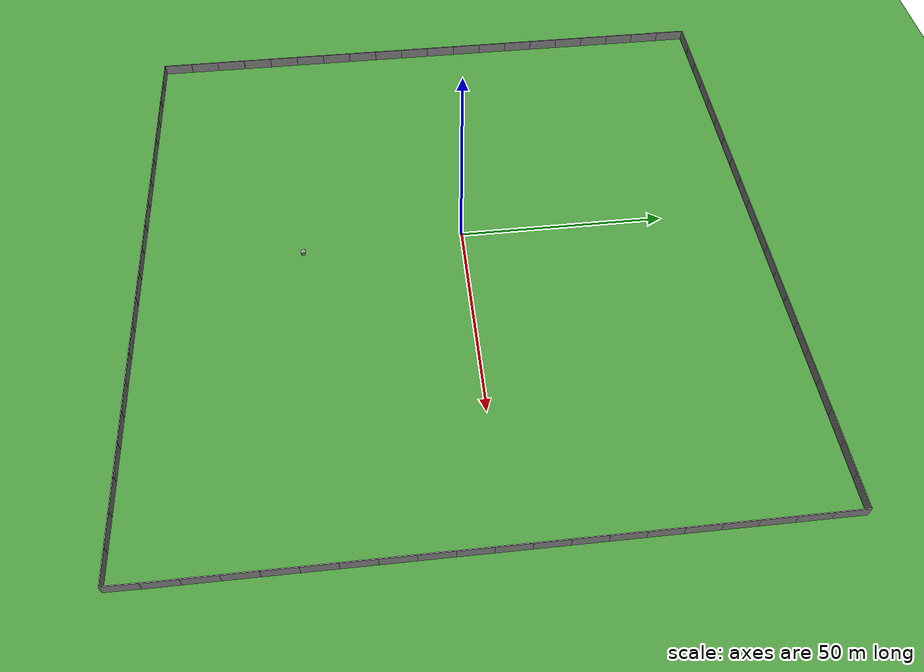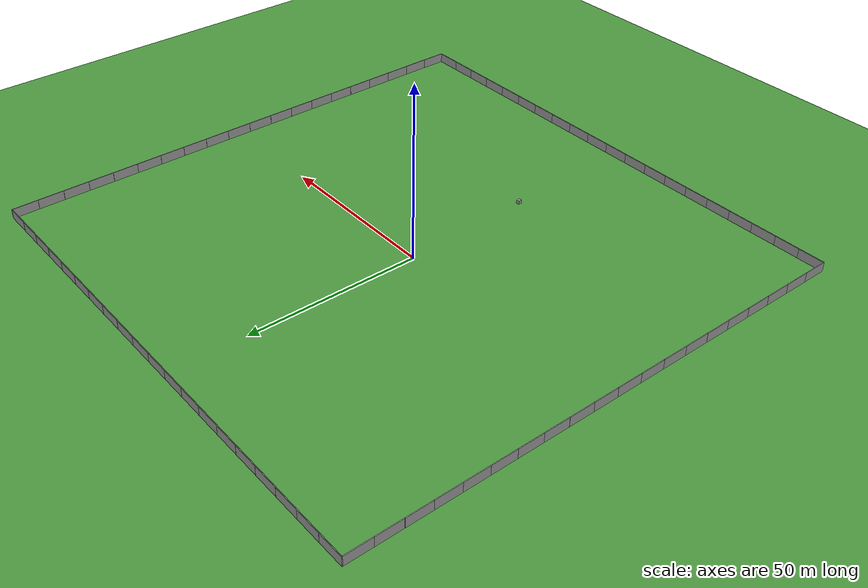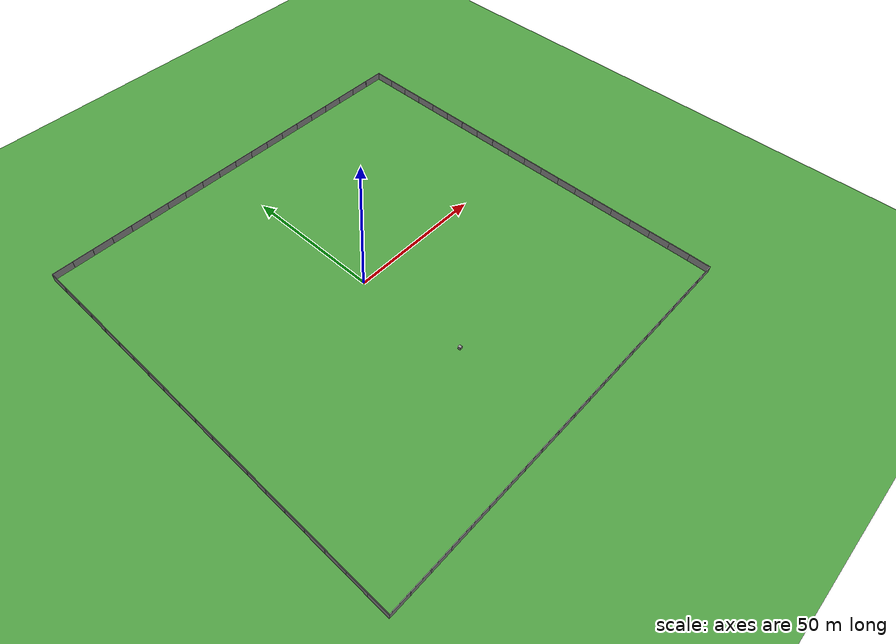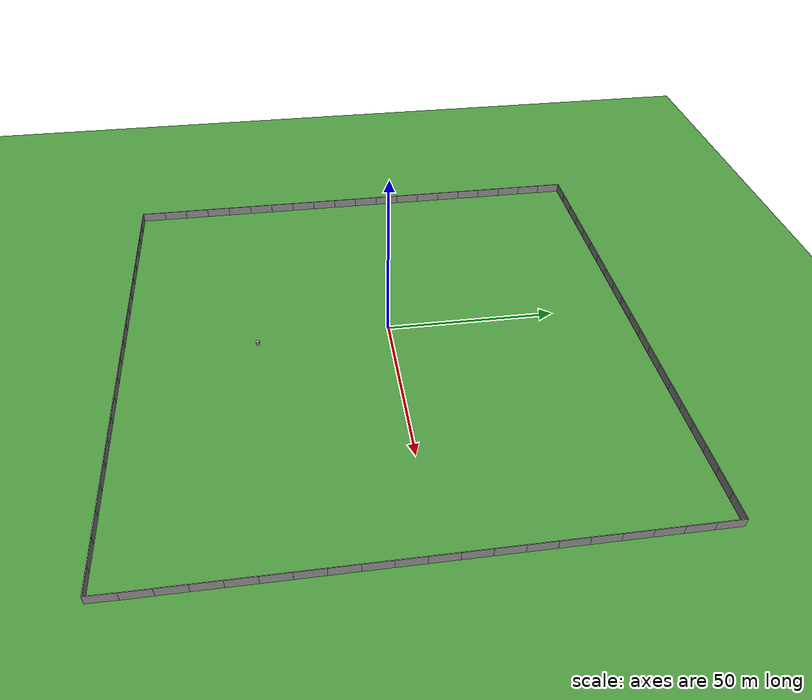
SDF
<sdf version="1.7">
 <world name="default">
  <gravity>0 0 -9.8</gravity>
  <magnetic_field>6e-06 2.3e-05 -4.2e-05</magnetic_field>
  <atmosphere type="adiabatic"/>
  <physics name="default_physics" default="0" type="ode">
   <max_step_size>0.001</max_step_size>
   <real_time_factor>1</real_time_factor>
   <real_time_update_rate>1000</real_time_update_rate>
  </physics>
  <scene><ambient>0.4 0.4 0.4 1</ambient><background>0.7 0.7 0.7 1</background><shadows>1</shadows></scene>
  <spherical_coordinates>
   <surface_model>EARTH_WGS84</surface_model>
   <latitude_deg>0</latitude_deg>
   <longitude_deg>0</longitude_deg>
   <elevation>0</elevation>
   <heading_deg>0</heading_deg>
  </spherical_coordinates>
  <model name="vrc_driving_terrain">
   <static>1</static>
   <link name="grass_plane">
    <collision name="collision">
     <geometry><plane><normal>0 0 1</normal><size>150 150</size></plane></geometry>
     <surface><friction><ode><mu>0.5</mu><mu2>0.5</mu2></ode></friction></surface>
    </collision>
    <visual name="visual_0">
     <cast_shadows>0</cast_shadows>
     <geometry><plane><normal>0 0 1</normal><size>150 150</size></plane></geometry>
     <material>
      <script>
       <uri>model://forest/vrc_driving_terrain/materials/scripts</uri>
       <uri>model://forest/vrc_driving_terrain/materials/textures</uri>
       <name>vrc/grass</name>
      </script>
     </material>
    </visual>
   </link>
   <pose>6.27224 -2.36963 0 0 -0 0</pose>
  </model>
  <model name="grey_wall_clone_10_clone_clone_clone_11_clone">
   <static>1</static>
   <link name="link">
    <pose>0 0 1.4 0 -0 0</pose>
    <collision name="collision"><geometry><box><size>7.5 0.2 2.8</size></box></geometry></collision>
    <visual name="visual">
     <cast_shadows>0</cast_shadows>
     <geometry><box><size>7.5 0.2 2.8</size></box></geometry>
     <material>
      <script>
       <uri>model://forest/grey_wall/materials/scripts</uri>
       <uri>model://forest/grey_wall/materials/textures</uri>
       <name>vrc/grey_wall</name>
      </script>
     </material>
    </visual>
   </link>
   <pose>-64.823 -77.1867 0 0 -0 0</pose>
  </model>
  <model name="grey_wall_clone_10_clone_clone_clone_11_clone_clone">
   <static>1</static>
   <link name="link">
    <pose>0 0 1.4 0 -0 0</pose>
    <collision name="collision"><geometry><box><size>7.5 0.2 2.8</size></box></geometry></collision>
    <visual name="visual">
     <cast_shadows>0</cast_shadows>
     <geometry><box><size>7.5 0.2 2.8</size></box></geometry>
     <material>
      <script>
       <uri>model://forest/grey_wall/materials/scripts</uri>
       <uri>model://forest/grey_wall/materials/textures</uri>
       <name>vrc/grey_wall</name>
      </script>
     </material>
    </visual>
   </link>
   <pose>-57.5346 -77.2024 0 0 -0 0</pose>
  </model>
  <model name="grey_wall_clone_10_clone_clone_clone_11_clone_clone_0">
   <static>1</static>
   <link name="link">
    <pose>0 0 1.4 0 -0 0</pose>
    <collision name="collision"><geometry><box><size>7.5 0.2 2.8</size></box></geometry></collision>
    <visual name="visual">
     <cast_shadows>0</cast_shadows>
     <geometry><box><size>7.5 0.2 2.8</size></box></geometry>
     <material>
      <script>
       <uri>model://forest/grey_wall/materials/scripts</uri>
       <uri>model://forest/grey_wall/materials/textures</uri>
       <name>vrc/grey_wall</name>
      </script>
     </material>
    </visual>
   </link>
   <pose>-50.026 -77.2083 0 0 -0 0</pose>
  </model>
  <model name="grey_wall_clone_10_clone_clone_clone_11_clone_clone_1">
   <static>1</static>
   <link name="link">
    <pose>0 0 1.4 0 -0 0</pose>
    <collision name="collision"><geometry><box><size>7.5 0.2 2.8</size></box></geometry></collision>
    <visual name="visual">
     <cast_shadows>0</cast_shadows>
     <geometry><box><size>7.5 0.2 2.8</size></box></geometry>
     <material>
      <script>
       <uri>model://forest/grey_wall/materials/scripts</uri>
       <uri>model://forest/grey_wall/materials/textures</uri>
       <name>vrc/grey_wall</name>
      </script>
     </material>
    </visual>
   </link>
   <pose>-42.5276 -77.1982 0 0 -0 0</pose>
  </model>
  <model name="grey_wall_clone_10_clone_clone_clone_11_clone_clone_2">
   <static>1</static>
   <link name="link">
    <pose>0 0 1.4 0 -0 0</pose>
    <collision name="collision"><geometry><box><size>7.5 0.2 2.8</size></box></geometry></collision>
    <visual name="visual">
     <cast_shadows>0</cast_shadows>
     <geometry><box><size>7.5 0.2 2.8</size></box></geometry>
     <material>
      <script>
       <uri>model://forest/grey_wall/materials/scripts</uri>
       <uri>model://forest/grey_wall/materials/textures</uri>
       <name>vrc/grey_wall</name>
      </script>
     </material>
    </visual>
   </link>
   <pose>-35.0175 -77.2078 0 0 -0 0</pose>
  </model>
  <model name="grey_wall_clone_10_clone_clone_clone_11_clone_clone_3">
   <static>1</static>
   <link name="link">
    <pose>0 0 1.4 0 -0 0</pose>
    <collision name="collision"><geometry><box><size>7.5 0.2 2.8</size></box></geometry></collision>
    <visual name="visual">
     <cast_shadows>0</cast_shadows>
     <geometry><box><size>7.5 0.2 2.8</size></box></geometry>
     <material>
      <script>
       <uri>model://forest/grey_wall/materials/scripts</uri>
       <uri>model://forest/grey_wall/materials/textures</uri>
       <name>vrc/grey_wall</name>
      </script>
     </material>
    </visual>
   </link>
   <pose>-27.5544 -77.2087 0 0 -0 0</pose>
  </model>
  <model name="grey_wall_clone_10_clone_clone_clone_11_clone_clone_4">
   <static>1</static>
   <link name="link">
    <pose>0 0 1.4 0 -0 0</pose>
    <collision name="collision"><geometry><box><size>7.5 0.2 2.8</size></box></geometry></collision>
    <visual name="visual">
     <cast_shadows>0</cast_shadows>
     <geometry><box><size>7.5 0.2 2.8</size></box></geometry>
     <material>
      <script>
       <uri>model://forest/grey_wall/materials/scripts</uri>
       <uri>model://forest/grey_wall/materials/textures</uri>
       <name>vrc/grey_wall</name>
      </script>
     </material>
    </visual>
   </link>
   <pose>-20.0557 -77.2142 0 0 -0 0</pose>
  </model>
  <model name="grey_wall_clone_10_clone_clone_clone_11_clone_clone_5">
   <static>1</static>
   <link name="link">
    <pose>0 0 1.4 0 -0 0</pose>
    <collision name="collision"><geometry><box><size>7.5 0.2 2.8</size></box></geometry></collision>
    <visual name="visual">
     <cast_shadows>0</cast_shadows>
     <geometry><box><size>7.5 0.2 2.8</size></box></geometry>
     <material>
      <script>
       <uri>model://forest/grey_wall/materials/scripts</uri>
       <uri>model://forest/grey_wall/materials/textures</uri>
       <name>vrc/grey_wall</name>
      </script>
     </material>
    </visual>
   </link>
   <pose>-12.5467 -77.224 0 0 -0 0</pose>
  </model>
  <model name="grey_wall_clone_10_clone_clone_clone_11_clone_clone_6">
   <static>1</static>
   <link name="link">
    <pose>0 0 1.4 0 -0 0</pose>
    <collision name="collision"><geometry><box><size>7.5 0.2 2.8</size></box></geometry></collision>
    <visual name="visual">
     <cast_shadows>0</cast_shadows>
     <geometry><box><size>7.5 0.2 2.8</size></box></geometry>
     <material>
      <script>
       <uri>model://forest/grey_wall/materials/scripts</uri>
       <uri>model://forest/grey_wall/materials/textures</uri>
       <name>vrc/grey_wall</name>
      </script>
     </material>
    </visual>
   </link>
   <pose>-5.04952 -77.2253 0 0 -0 0</pose>
  </model>
  <model name="grey_wall_clone_10_clone_clone_clone_11_clone_clone_7">
   <static>1</static>
   <link name="link">
    <pose>0 0 1.4 0 -0 0</pose>
    <collision name="collision"><geometry><box><size>7.5 0.2 2.8</size></box></geometry></collision>
    <visual name="visual">
     <cast_shadows>0</cast_shadows>
     <geometry><box><size>7.5 0.2 2.8</size></box></geometry>
     <material>
      <script>
       <uri>model://forest/grey_wall/materials/scripts</uri>
       <uri>model://forest/grey_wall/materials/textures</uri>
       <name>vrc/grey_wall</name>
      </script>
     </material>
    </visual>
   </link>
   <pose>2.45064 -77.2385 0 0 -0 0</pose>
  </model>
  <model name="grey_wall_clone_10_clone_clone_clone_11_clone_clone_8">
   <static>1</static>
   <link name="link">
    <pose>0 0 1.4 0 -0 0</pose>
    <collision name="collision"><geometry><box><size>7.5 0.2 2.8</size></box></geometry></collision>
    <visual name="visual">
     <cast_shadows>0</cast_shadows>
     <geometry><box><size>7.5 0.2 2.8</size></box></geometry>
     <material>
      <script>
       <uri>model://forest/grey_wall/materials/scripts</uri>
       <uri>model://forest/grey_wall/materials/textures</uri>
       <name>vrc/grey_wall</name>
      </script>
     </material>
    </visual>
   </link>
   <pose>9.9578 -77.2456 0 0 -0 0</pose>
  </model>
  <model name="grey_wall_clone_10_clone_clone_clone_11_clone_clone_9">
   <static>1</static>
   <link name="link">
    <pose>0 0 1.4 0 -0 0</pose>
    <collision name="collision"><geometry><box><size>7.5 0.2 2.8</size></box></geometry></collision>
    <visual name="visual">
     <cast_shadows>0</cast_shadows>
     <geometry><box><size>7.5 0.2 2.8</size></box></geometry>
     <material>
      <script>
       <uri>model://forest/grey_wall/materials/scripts</uri>
       <uri>model://forest/grey_wall/materials/textures</uri>
       <name>vrc/grey_wall</name>
      </script>
     </material>
    </visual>
   </link>
   <pose>17.442 -77.2428 0 0 -0 0</pose>
  </model>
  <model name="grey_wall_clone_10_clone_clone_clone_11_clone_clone_10">
   <static>1</static>
   <link name="link">
    <pose>0 0 1.4 0 -0 0</pose>
    <collision name="collision"><geometry><box><size>7.5 0.2 2.8</size></box></geometry></collision>
    <visual name="visual">
     <cast_shadows>0</cast_shadows>
     <geometry><box><size>7.5 0.2 2.8</size></box></geometry>
     <material>
      <script>
       <uri>model://forest/grey_wall/materials/scripts</uri>
       <uri>model://forest/grey_wall/materials/textures</uri>
       <name>vrc/grey_wall</name>
      </script>
     </material>
    </visual>
   </link>
   <pose>24.9441 -77.2473 0 0 -0 0</pose>
  </model>
  <model name="grey_wall_clone_10_clone_clone_clone_11_clone_clone_11">
   <static>1</static>
   <link name="link">
    <pose>0 0 1.4 0 -0 0</pose>
    <collision name="collision"><geometry><box><size>7.5 0.2 2.8</size></box></geometry></collision>
    <visual name="visual">
     <cast_shadows>0</cast_shadows>
     <geometry><box><size>7.5 0.2 2.8</size></box></geometry>
     <material>
      <script>
       <uri>model://forest/grey_wall/materials/scripts</uri>
       <uri>model://forest/grey_wall/materials/textures</uri>
       <name>vrc/grey_wall</name>
      </script>
     </material>
    </visual>
   </link>
   <pose>32.4421 -77.2463 0 0 -0 0</pose>
  </model>
  <model name="grey_wall_clone_10_clone_clone_clone_11_clone_clone_12">
   <static>1</static>
   <link name="link">
    <pose>0 0 1.4 0 -0 0</pose>
    <collision name="collision"><geometry><box><size>7.5 0.2 2.8</size></box></geometry></collision>
    <visual name="visual">
     <cast_shadows>0</cast_shadows>
     <geometry><box><size>7.5 0.2 2.8</size></box></geometry>
     <material>
      <script>
       <uri>model://forest/grey_wall/materials/scripts</uri>
       <uri>model://forest/grey_wall/materials/textures</uri>
       <name>vrc/grey_wall</name>
      </script>
     </material>
    </visual>
   </link>
   <pose>39.9314 -77.2456 0 0 -0 0</pose>
  </model>
  <model name="grey_wall_clone_10_clone_clone_clone_11_clone_clone_13">
   <static>1</static>
   <link name="link">
    <pose>0 0 1.4 0 -0 0</pose>
    <collision name="collision"><geometry><box><size>7.5 0.2 2.8</size></box></geometry></collision>
    <visual name="visual">
     <cast_shadows>0</cast_shadows>
     <geometry><box><size>7.5 0.2 2.8</size></box></geometry>
     <material>
      <script>
       <uri>model://forest/grey_wall/materials/scripts</uri>
       <uri>model://forest/grey_wall/materials/textures</uri>
       <name>vrc/grey_wall</name>
      </script>
     </material>
    </visual>
   </link>
   <pose>47.429 -77.2489 0 0 -0 0</pose>
  </model>
  <model name="grey_wall_clone_10_clone_clone_clone_11_clone_clone_14">
   <static>1</static>
   <link name="link">
    <pose>0 0 1.4 0 -0 0</pose>
    <collision name="collision"><geometry><box><size>7.5 0.2 2.8</size></box></geometry></collision>
    <visual name="visual">
     <cast_shadows>0</cast_shadows>
     <geometry><box><size>7.5 0.2 2.8</size></box></geometry>
     <material>
      <script>
       <uri>model://forest/grey_wall/materials/scripts</uri>
       <uri>model://forest/grey_wall/materials/textures</uri>
       <name>vrc/grey_wall</name>
      </script>
     </material>
    </visual>
   </link>
   <pose>54.8935 -77.2438 0 0 -0 0</pose>
  </model>
  <model name="grey_wall_clone_10_clone_clone_clone_11_clone_clone_15">
   <static>1</static>
   <link name="link">
    <pose>0 0 1.4 0 -0 0</pose>
    <collision name="collision"><geometry><box><size>7.5 0.2 2.8</size></box></geometry></collision>
    <visual name="visual">
     <cast_shadows>0</cast_shadows>
     <geometry><box><size>7.5 0.2 2.8</size></box></geometry>
     <material>
      <script>
       <uri>model://forest/grey_wall/materials/scripts</uri>
       <uri>model://forest/grey_wall/materials/textures</uri>
       <name>vrc/grey_wall</name>
      </script>
     </material>
    </visual>
   </link>
   <pose>62.4043 -77.2429 0 0 -0 0</pose>
  </model>
  <model name="grey_wall_clone_10_clone_clone_clone_11_clone_clone_16">
   <static>1</static>
   <link name="link">
    <pose>0 0 1.4 0 -0 0</pose>
    <collision name="collision"><geometry><box><size>7.5 0.2 2.8</size></box></geometry></collision>
    <visual name="visual">
     <cast_shadows>0</cast_shadows>
     <geometry><box><size>7.5 0.2 2.8</size></box></geometry>
     <material>
      <script>
       <uri>model://forest/grey_wall/materials/scripts</uri>
       <uri>model://forest/grey_wall/materials/textures</uri>
       <name>vrc/grey_wall</name>
      </script>
     </material>
    </visual>
   </link>
   <pose>69.8968 -77.2494 0 0 -0 0</pose>
  </model>
  <model name="grey_wall_clone_10_clone_clone_clone_11_clone_clone_17">
   <static>1</static>
   <link name="link">
    <pose>0 0 1.4 0 -0 0</pose>
    <collision name="collision"><geometry><box><size>7.5 0.2 2.8</size></box></geometry></collision>
    <visual name="visual">
     <cast_shadows>0</cast_shadows>
     <geometry><box><size>7.5 0.2 2.8</size></box></geometry>
     <material>
      <script>
       <uri>model://forest/grey_wall/materials/scripts</uri>
       <uri>model://forest/grey_wall/materials/textures</uri>
       <name>vrc/grey_wall</name>
      </script>
     </material>
    </visual>
   </link>
   <pose>77.4066 -77.2521 0 0 -0 0</pose>
  </model>
  <model name="grey_wall_clone_10_clone_0_clone_11_clone">
   <static>1</static>
   <link name="link">
    <pose>0 0 1.4 0 -0 0</pose>
    <collision name="collision"><geometry><box><size>7.5 0.2 2.8</size></box></geometry></collision>
    <visual name="visual">
     <cast_shadows>0</cast_shadows>
     <geometry><box><size>7.5 0.2 2.8</size></box></geometry>
     <material>
      <script>
       <uri>model://forest/grey_wall/materials/scripts</uri>
       <uri>model://forest/grey_wall/materials/textures</uri>
       <name>vrc/grey_wall</name>
      </script>
     </material>
    </visual>
   </link>
   <pose>81.2442 -73.5802 0 0 0 -1.5802</pose>
  </model>
  <model name="grey_wall_clone_10_clone_0_clone_10_clone">
   <static>1</static>
   <link name="link">
    <pose>0 0 1.4 0 -0 0</pose>
    <collision name="collision"><geometry><box><size>7.5 0.2 2.8</size></box></geometry></collision>
    <visual name="visual">
     <cast_shadows>0</cast_shadows>
     <geometry><box><size>7.5 0.2 2.8</size></box></geometry>
     <material>
      <script>
       <uri>model://forest/grey_wall/materials/scripts</uri>
       <uri>model://forest/grey_wall/materials/textures</uri>
       <name>vrc/grey_wall</name>
      </script>
     </material>
    </visual>
   </link>
   <pose>81.3001 -66.0858 0 0 0 -1.56932</pose>
  </model>
  <model name="grey_wall_clone_10_clone_0_clone_9_clone">
   <static>1</static>
   <link name="link">
    <pose>0 0 1.4 0 -0 0</pose>
    <collision name="collision"><geometry><box><size>7.5 0.2 2.8</size></box></geometry></collision>
    <visual name="visual">
     <cast_shadows>0</cast_shadows>
     <geometry><box><size>7.5 0.2 2.8</size></box></geometry>
     <material>
      <script>
       <uri>model://forest/grey_wall/materials/scripts</uri>
       <uri>model://forest/grey_wall/materials/textures</uri>
       <name>vrc/grey_wall</name>
      </script>
     </material>
    </visual>
   </link>
   <pose>81.2777 -58.6142 0 0 0 -1.56932</pose>
  </model>
  <model name="grey_wall_clone_10_clone_0_clone_8_clone">
   <static>1</static>
   <link name="link">
    <pose>0 0 1.4 0 -0 0</pose>
    <collision name="collision"><geometry><box><size>7.5 0.2 2.8</size></box></geometry></collision>
    <visual name="visual">
     <cast_shadows>0</cast_shadows>
     <geometry><box><size>7.5 0.2 2.8</size></box></geometry>
     <material>
      <script>
       <uri>model://forest/grey_wall/materials/scripts</uri>
       <uri>model://forest/grey_wall/materials/textures</uri>
       <name>vrc/grey_wall</name>
      </script>
     </material>
    </visual>
   </link>
   <pose>81.2777 -51.1177 0 0 0 -1.56932</pose>
  </model>
  <model name="grey_wall_clone_10_clone_0_clone_7_clone">
   <static>1</static>
   <link name="link">
    <pose>0 0 1.4 0 -0 0</pose>
    <collision name="collision"><geometry><box><size>7.5 0.2 2.8</size></box></geometry></collision>
    <visual name="visual">
     <cast_shadows>0</cast_shadows>
     <geometry><box><size>7.5 0.2 2.8</size></box></geometry>
     <material>
      <script>
       <uri>model://forest/grey_wall/materials/scripts</uri>
       <uri>model://forest/grey_wall/materials/textures</uri>
       <name>vrc/grey_wall</name>
      </script>
     </material>
    </visual>
   </link>
   <pose>81.2788 -43.6064 0 0 0 -1.56932</pose>
  </model>
  <model name="grey_wall_clone_10_clone_0_clone_6_clone">
   <static>1</static>
   <link name="link">
    <pose>0 0 1.4 0 -0 0</pose>
    <collision name="collision"><geometry><box><size>7.5 0.2 2.8</size></box></geometry></collision>
    <visual name="visual">
     <cast_shadows>0</cast_shadows>
     <geometry><box><size>7.5 0.2 2.8</size></box></geometry>
     <material>
      <script>
       <uri>model://forest/grey_wall/materials/scripts</uri>
       <uri>model://forest/grey_wall/materials/textures</uri>
       <name>vrc/grey_wall</name>
      </script>
     </material>
    </visual>
   </link>
   <pose>81.2767 -36.0958 0 0 0 -1.56932</pose>
  </model>
  <model name="grey_wall_clone_10_clone_0_clone_5_clone_13">
   <static>1</static>
   <link name="link">
    <pose>0 0 1.4 0 -0 0</pose>
    <collision name="collision"><geometry><box><size>7.5 0.2 2.8</size></box></geometry></collision>
    <visual name="visual">
     <cast_shadows>0</cast_shadows>
     <geometry><box><size>7.5 0.2 2.8</size></box></geometry>
     <material>
      <script>
       <uri>model://forest/grey_wall/materials/scripts</uri>
       <uri>model://forest/grey_wall/materials/textures</uri>
       <name>vrc/grey_wall</name>
      </script>
     </material>
    </visual>
   </link>
   <pose>81.2728 -28.5811 0 0 0 -1.56932</pose>
  </model>
  <model name="grey_wall_clone_10_clone_0_clone_4_clone">
   <static>1</static>
   <link name="link">
    <pose>0 0 1.4 0 -0 0</pose>
    <collision name="collision"><geometry><box><size>7.5 0.2 2.8</size></box></geometry></collision>
    <visual name="visual">
     <cast_shadows>0</cast_shadows>
     <geometry><box><size>7.5 0.2 2.8</size></box></geometry>
     <material>
      <script>
       <uri>model://forest/grey_wall/materials/scripts</uri>
       <uri>model://forest/grey_wall/materials/textures</uri>
       <name>vrc/grey_wall</name>
      </script>
     </material>
    </visual>
   </link>
   <pose>81.2736 -21.0806 0 0 0 -1.56932</pose>
  </model>
  <model name="grey_wall_clone_10_clone_0_clone_3_clone">
   <static>1</static>
   <link name="link">
    <pose>0 0 1.4 0 -0 0</pose>
    <collision name="collision"><geometry><box><size>7.5 0.2 2.8</size></box></geometry></collision>
    <visual name="visual">
     <cast_shadows>0</cast_shadows>
     <geometry><box><size>7.5 0.2 2.8</size></box></geometry>
     <material>
      <script>
       <uri>model://forest/grey_wall/materials/scripts</uri>
       <uri>model://forest/grey_wall/materials/textures</uri>
       <name>vrc/grey_wall</name>
      </script>
     </material>
    </visual>
   </link>
   <pose>81.2554 -13.5842 0 0 0 -1.56932</pose>
  </model>
  <model name="grey_wall_clone_10_clone_0_clone_2_clone">
   <static>1</static>
   <link name="link">
    <pose>0 0 1.4 0 -0 0</pose>
    <collision name="collision"><geometry><box><size>7.5 0.2 2.8</size></box></geometry></collision>
    <visual name="visual">
     <cast_shadows>0</cast_shadows>
     <geometry><box><size>7.5 0.2 2.8</size></box></geometry>
     <material>
      <script>
       <uri>model://forest/grey_wall/materials/scripts</uri>
       <uri>model://forest/grey_wall/materials/textures</uri>
       <name>vrc/grey_wall</name>
      </script>
     </material>
    </visual>
   </link>
   <pose>81.262 -6.06923 0 0 0 -1.56932</pose>
  </model>
  <model name="grey_wall_clone_10_clone_0_clone_1_clone">
   <static>1</static>
   <link name="link">
    <pose>0 0 1.4 0 -0 0</pose>
    <collision name="collision"><geometry><box><size>7.5 0.2 2.8</size></box></geometry></collision>
    <visual name="visual">
     <cast_shadows>0</cast_shadows>
     <geometry><box><size>7.5 0.2 2.8</size></box></geometry>
     <material>
      <script>
       <uri>model://forest/grey_wall/materials/scripts</uri>
       <uri>model://forest/grey_wall/materials/textures</uri>
       <name>vrc/grey_wall</name>
      </script>
     </material>
    </visual>
   </link>
   <pose>81.2538 1.43804 0 0 0 -1.56932</pose>
  </model>
  <model name="grey_wall_clone_10_clone_0_clone_0_clone">
   <static>1</static>
   <link name="link">
    <pose>0 0 1.4 0 -0 0</pose>
    <collision name="collision"><geometry><box><size>7.5 0.2 2.8</size></box></geometry></collision>
    <visual name="visual">
     <cast_shadows>0</cast_shadows>
     <geometry><box><size>7.5 0.2 2.8</size></box></geometry>
     <material>
      <script>
       <uri>model://forest/grey_wall/materials/scripts</uri>
       <uri>model://forest/grey_wall/materials/textures</uri>
       <name>vrc/grey_wall</name>
      </script>
     </material>
    </visual>
   </link>
   <pose>81.2487 8.94341 0 0 0 -1.56932</pose>
  </model>
  <model name="grey_wall_clone_10_clone_0_clone_clone">
   <static>1</static>
   <link name="link">
    <pose>0 0 1.4 0 -0 0</pose>
    <collision name="collision"><geometry><box><size>7.5 0.2 2.8</size></box></geometry></collision>
    <visual name="visual">
     <cast_shadows>0</cast_shadows>
     <geometry><box><size>7.5 0.2 2.8</size></box></geometry>
     <material>
      <script>
       <uri>model://forest/grey_wall/materials/scripts</uri>
       <uri>model://forest/grey_wall/materials/textures</uri>
       <name>vrc/grey_wall</name>
      </script>
     </material>
    </visual>
   </link>
   <pose>81.244 16.4592 0 0 0 -1.56932</pose>
  </model>
  <model name="grey_wall_clone_10_clone_0_clone_12">
   <static>1</static>
   <link name="link">
    <pose>0 0 1.4 0 -0 0</pose>
    <collision name="collision"><geometry><box><size>7.5 0.2 2.8</size></box></geometry></collision>
    <visual name="visual">
     <cast_shadows>0</cast_shadows>
     <geometry><box><size>7.5 0.2 2.8</size></box></geometry>
     <material>
      <script>
       <uri>model://forest/grey_wall/materials/scripts</uri>
       <uri>model://forest/grey_wall/materials/textures</uri>
       <name>vrc/grey_wall</name>
      </script>
     </material>
    </visual>
   </link>
   <pose>81.241 23.9604 0 0 0 -1.56932</pose>
  </model>
  <model name="grey_wall_clone_10_clone_0_clone_13">
   <static>1</static>
   <link name="link">
    <pose>0 0 1.4 0 -0 0</pose>
    <collision name="collision"><geometry><box><size>7.5 0.2 2.8</size></box></geometry></collision>
    <visual name="visual">
     <cast_shadows>0</cast_shadows>
     <geometry><box><size>7.5 0.2 2.8</size></box></geometry>
     <material>
      <script>
       <uri>model://forest/grey_wall/materials/scripts</uri>
       <uri>model://forest/grey_wall/materials/textures</uri>
       <name>vrc/grey_wall</name>
      </script>
     </material>
    </visual>
   </link>
   <pose>81.233 31.4667 0 0 0 -1.56932</pose>
  </model>
  <model name="grey_wall_clone_10_clone_0_clone_14">
   <static>1</static>
   <link name="link">
    <pose>0 0 1.4 0 -0 0</pose>
    <collision name="collision"><geometry><box><size>7.5 0.2 2.8</size></box></geometry></collision>
    <visual name="visual">
     <cast_shadows>0</cast_shadows>
     <geometry><box><size>7.5 0.2 2.8</size></box></geometry>
     <material>
      <script>
       <uri>model://forest/grey_wall/materials/scripts</uri>
       <uri>model://forest/grey_wall/materials/textures</uri>
       <name>vrc/grey_wall</name>
      </script>
     </material>
    </visual>
   </link>
   <pose>81.2299 38.978 0 0 0 -1.56932</pose>
  </model>
  <model name="grey_wall_clone_10_clone_0_clone_15">
   <static>1</static>
   <link name="link">
    <pose>0 0 1.4 0 -0 0</pose>
    <collision name="collision"><geometry><box><size>7.5 0.2 2.8</size></box></geometry></collision>
    <visual name="visual">
     <cast_shadows>0</cast_shadows>
     <geometry><box><size>7.5 0.2 2.8</size></box></geometry>
     <material>
      <script>
       <uri>model://forest/grey_wall/materials/scripts</uri>
       <uri>model://forest/grey_wall/materials/textures</uri>
       <name>vrc/grey_wall</name>
      </script>
     </material>
    </visual>
   </link>
   <pose>81.2399 46.4861 0 0 0 -1.56932</pose>
  </model>
  <model name="grey_wall_clone_10_clone_0_clone_16">
   <static>1</static>
   <link name="link">
    <pose>0 0 1.4 0 -0 0</pose>
    <collision name="collision"><geometry><box><size>7.5 0.2 2.8</size></box></geometry></collision>
    <visual name="visual">
     <cast_shadows>0</cast_shadows>
     <geometry><box><size>7.5 0.2 2.8</size></box></geometry>
     <material>
      <script>
       <uri>model://forest/grey_wall/materials/scripts</uri>
       <uri>model://forest/grey_wall/materials/textures</uri>
       <name>vrc/grey_wall</name>
      </script>
     </material>
    </visual>
   </link>
   <pose>81.2341 53.9889 0 0 0 -1.56932</pose>
  </model>
  <model name="grey_wall_clone_10_clone_0_clone_17">
   <static>1</static>
   <link name="link">
    <pose>0 0 1.4 0 -0 0</pose>
    <collision name="collision"><geometry><box><size>7.5 0.2 2.8</size></box></geometry></collision>
    <visual name="visual">
     <cast_shadows>0</cast_shadows>
     <geometry><box><size>7.5 0.2 2.8</size></box></geometry>
     <material>
      <script>
       <uri>model://forest/grey_wall/materials/scripts</uri>
       <uri>model://forest/grey_wall/materials/textures</uri>
       <name>vrc/grey_wall</name>
      </script>
     </material>
    </visual>
   </link>
   <pose>81.2319 61.4946 0 0 0 -1.56932</pose>
  </model>
  <model name="grey_wall_clone_10_clone_0_clone_18">
   <static>1</static>
   <link name="link">
    <pose>0 0 1.4 0 -0 0</pose>
    <collision name="collision"><geometry><box><size>7.5 0.2 2.8</size></box></geometry></collision>
    <visual name="visual">
     <cast_shadows>0</cast_shadows>
     <geometry><box><size>7.5 0.2 2.8</size></box></geometry>
     <material>
      <script>
       <uri>model://forest/grey_wall/materials/scripts</uri>
       <uri>model://forest/grey_wall/materials/textures</uri>
       <name>vrc/grey_wall</name>
      </script>
     </material>
    </visual>
   </link>
   <pose>81.2148 68.9647 0 0 0 -1.56932</pose>
  </model>
  <model name="grey_wall_clone_10_clone_clone_0">
   <static>1</static>
   <link name="link">
    <pose>0 0 1.4 0 -0 0</pose>
    <collision name="collision"><geometry><box><size>7.5 0.2 2.8</size></box></geometry></collision>
    <visual name="visual">
     <cast_shadows>0</cast_shadows>
     <geometry><box><size>7.5 0.2 2.8</size></box></geometry>
     <material>
      <script>
       <uri>model://forest/grey_wall/materials/scripts</uri>
       <uri>model://forest/grey_wall/materials/textures</uri>
       <name>vrc/grey_wall</name>
      </script>
     </material>
    </visual>
   </link>
   <pose>77.3508 72.6116 0 0 -0 0</pose>
  </model>
  <model name="grey_wall_clone_10_clone_clone_1">
   <static>1</static>
   <link name="link">
    <pose>0 0 1.4 0 -0 0</pose>
    <collision name="collision"><geometry><box><size>7.5 0.2 2.8</size></box></geometry></collision>
    <visual name="visual">
     <cast_shadows>0</cast_shadows>
     <geometry><box><size>7.5 0.2 2.8</size></box></geometry>
     <material>
      <script>
       <uri>model://forest/grey_wall/materials/scripts</uri>
       <uri>model://forest/grey_wall/materials/textures</uri>
       <name>vrc/grey_wall</name>
      </script>
     </material>
    </visual>
   </link>
   <pose>69.8438 72.6289 0 0 -0 0</pose>
  </model>
  <model name="grey_wall_clone_10_clone_clone_2">
   <static>1</static>
   <link name="link">
    <pose>0 0 1.4 0 -0 0</pose>
    <collision name="collision"><geometry><box><size>7.5 0.2 2.8</size></box></geometry></collision>
    <visual name="visual">
     <cast_shadows>0</cast_shadows>
     <geometry><box><size>7.5 0.2 2.8</size></box></geometry>
     <material>
      <script>
       <uri>model://forest/grey_wall/materials/scripts</uri>
       <uri>model://forest/grey_wall/materials/textures</uri>
       <name>vrc/grey_wall</name>
      </script>
     </material>
    </visual>
   </link>
   <pose>62.3519 72.6417 0 0 -0 0</pose>
  </model>
  <model name="grey_wall_clone_10_clone_clone_3">
   <static>1</static>
   <link name="link">
    <pose>0 0 1.4 0 -0 0</pose>
    <collision name="collision"><geometry><box><size>7.5 0.2 2.8</size></box></geometry></collision>
    <visual name="visual">
     <cast_shadows>0</cast_shadows>
     <geometry><box><size>7.5 0.2 2.8</size></box></geometry>
     <material>
      <script>
       <uri>model://forest/grey_wall/materials/scripts</uri>
       <uri>model://forest/grey_wall/materials/textures</uri>
       <name>vrc/grey_wall</name>
      </script>
     </material>
    </visual>
   </link>
   <pose>54.875 72.6299 0 0 -0 0</pose>
  </model>
  <model name="grey_wall_clone_10_clone_clone_4">
   <static>1</static>
   <link name="link">
    <pose>0 0 1.4 0 -0 0</pose>
    <collision name="collision"><geometry><box><size>7.5 0.2 2.8</size></box></geometry></collision>
    <visual name="visual">
     <cast_shadows>0</cast_shadows>
     <geometry><box><size>7.5 0.2 2.8</size></box></geometry>
     <material>
      <script>
       <uri>model://forest/grey_wall/materials/scripts</uri>
       <uri>model://forest/grey_wall/materials/textures</uri>
       <name>vrc/grey_wall</name>
      </script>
     </material>
    </visual>
   </link>
   <pose>47.3663 72.6324 0 0 -0 0</pose>
  </model>
  <model name="grey_wall_clone_10_clone_clone_5">
   <static>1</static>
   <link name="link">
    <pose>0 0 1.4 0 -0 0</pose>
    <collision name="collision"><geometry><box><size>7.5 0.2 2.8</size></box></geometry></collision>
    <visual name="visual">
     <cast_shadows>0</cast_shadows>
     <geometry><box><size>7.5 0.2 2.8</size></box></geometry>
     <material>
      <script>
       <uri>model://forest/grey_wall/materials/scripts</uri>
       <uri>model://forest/grey_wall/materials/textures</uri>
       <name>vrc/grey_wall</name>
      </script>
     </material>
    </visual>
   </link>
   <pose>39.8774 72.6251 0 0 -0 0</pose>
  </model>
  <model name="grey_wall_clone_10_clone_clone_6">
   <static>1</static>
   <link name="link">
    <pose>0 0 1.4 0 -0 0</pose>
    <collision name="collision"><geometry><box><size>7.5 0.2 2.8</size></box></geometry></collision>
    <visual name="visual">
     <cast_shadows>0</cast_shadows>
     <geometry><box><size>7.5 0.2 2.8</size></box></geometry>
     <material>
      <script>
       <uri>model://forest/grey_wall/materials/scripts</uri>
       <uri>model://forest/grey_wall/materials/textures</uri>
       <name>vrc/grey_wall</name>
      </script>
     </material>
    </visual>
   </link>
   <pose>32.3692 72.6193 0 0 -0 0</pose>
  </model>
  <model name="grey_wall_clone_10_clone_clone_7">
   <static>1</static>
   <link name="link">
    <pose>0 0 1.4 0 -0 0</pose>
    <collision name="collision"><geometry><box><size>7.5 0.2 2.8</size></box></geometry></collision>
    <visual name="visual">
     <cast_shadows>0</cast_shadows>
     <geometry><box><size>7.5 0.2 2.8</size></box></geometry>
     <material>
      <script>
       <uri>model://forest/grey_wall/materials/scripts</uri>
       <uri>model://forest/grey_wall/materials/textures</uri>
       <name>vrc/grey_wall</name>
      </script>
     </material>
    </visual>
   </link>
   <pose>24.8712 72.6187 0 0 -0 0</pose>
  </model>
  <model name="grey_wall_clone_10_clone_clone_8">
   <static>1</static>
   <link name="link">
    <pose>0 0 1.4 0 -0 0</pose>
    <collision name="collision"><geometry><box><size>7.5 0.2 2.8</size></box></geometry></collision>
    <visual name="visual">
     <cast_shadows>0</cast_shadows>
     <geometry><box><size>7.5 0.2 2.8</size></box></geometry>
     <material>
      <script>
       <uri>model://forest/grey_wall/materials/scripts</uri>
       <uri>model://forest/grey_wall/materials/textures</uri>
       <name>vrc/grey_wall</name>
      </script>
     </material>
    </visual>
   </link>
   <pose>17.3775 72.6269 0 0 -0 0</pose>
  </model>
  <model name="grey_wall_clone_10_clone_clone_9">
   <static>1</static>
   <link name="link">
    <pose>0 0 1.4 0 -0 0</pose>
    <collision name="collision"><geometry><box><size>7.5 0.2 2.8</size></box></geometry></collision>
    <visual name="visual">
     <cast_shadows>0</cast_shadows>
     <geometry><box><size>7.5 0.2 2.8</size></box></geometry>
     <material>
      <script>
       <uri>model://forest/grey_wall/materials/scripts</uri>
       <uri>model://forest/grey_wall/materials/textures</uri>
       <name>vrc/grey_wall</name>
      </script>
     </material>
    </visual>
   </link>
   <pose>9.8792 72.6386 0 0 -0 0</pose>
  </model>
  <model name="grey_wall_clone_10_clone_clone_10">
   <static>1</static>
   <link name="link">
    <pose>0 0 1.4 0 -0 0</pose>
    <collision name="collision"><geometry><box><size>7.5 0.2 2.8</size></box></geometry></collision>
    <visual name="visual">
     <cast_shadows>0</cast_shadows>
     <geometry><box><size>7.5 0.2 2.8</size></box></geometry>
     <material>
      <script>
       <uri>model://forest/grey_wall/materials/scripts</uri>
       <uri>model://forest/grey_wall/materials/textures</uri>
       <name>vrc/grey_wall</name>
      </script>
     </material>
    </visual>
   </link>
   <pose>2.37975 72.635 0 0 -0 0</pose>
  </model>
  <model name="grey_wall_clone_10_clone_clone_11">
   <static>1</static>
   <link name="link">
    <pose>0 0 1.4 0 -0 0</pose>
    <collision name="collision"><geometry><box><size>7.5 0.2 2.8</size></box></geometry></collision>
    <visual name="visual">
     <cast_shadows>0</cast_shadows>
     <geometry><box><size>7.5 0.2 2.8</size></box></geometry>
     <material>
      <script>
       <uri>model://forest/grey_wall/materials/scripts</uri>
       <uri>model://forest/grey_wall/materials/textures</uri>
       <name>vrc/grey_wall</name>
      </script>
     </material>
    </visual>
   </link>
   <pose>-5.09788 72.6331 0 0 -0 0</pose>
  </model>
  <model name="grey_wall_clone_10_clone_clone_12">
   <static>1</static>
   <link name="link">
    <pose>0 0 1.4 0 -0 0</pose>
    <collision name="collision"><geometry><box><size>7.5 0.2 2.8</size></box></geometry></collision>
    <visual name="visual">
     <cast_shadows>0</cast_shadows>
     <geometry><box><size>7.5 0.2 2.8</size></box></geometry>
     <material>
      <script>
       <uri>model://forest/grey_wall/materials/scripts</uri>
       <uri>model://forest/grey_wall/materials/textures</uri>
       <name>vrc/grey_wall</name>
      </script>
     </material>
    </visual>
   </link>
   <pose>-12.6061 72.6425 0 0 -0 0</pose>
  </model>
  <model name="grey_wall_clone_10_clone_clone_13">
   <static>1</static>
   <link name="link">
    <pose>0 0 1.4 0 -0 0</pose>
    <collision name="collision"><geometry><box><size>7.5 0.2 2.8</size></box></geometry></collision>
    <visual name="visual">
     <cast_shadows>0</cast_shadows>
     <geometry><box><size>7.5 0.2 2.8</size></box></geometry>
     <material>
      <script>
       <uri>model://forest/grey_wall/materials/scripts</uri>
       <uri>model://forest/grey_wall/materials/textures</uri>
       <name>vrc/grey_wall</name>
      </script>
     </material>
    </visual>
   </link>
   <pose>-20.1193 72.6527 0 0 -0 0</pose>
  </model>
  <model name="grey_wall_clone_10_clone_clone_14">
   <static>1</static>
   <link name="link">
    <pose>0 0 1.4 0 -0 0</pose>
    <collision name="collision"><geometry><box><size>7.5 0.2 2.8</size></box></geometry></collision>
    <visual name="visual">
     <cast_shadows>0</cast_shadows>
     <geometry><box><size>7.5 0.2 2.8</size></box></geometry>
     <material>
      <script>
       <uri>model://forest/grey_wall/materials/scripts</uri>
       <uri>model://forest/grey_wall/materials/textures</uri>
       <name>vrc/grey_wall</name>
      </script>
     </material>
    </visual>
   </link>
   <pose>-27.6199 72.6558 0 0 -0 0</pose>
  </model>
  <model name="grey_wall_clone_10_clone_clone_15">
   <static>1</static>
   <link name="link">
    <pose>0 0 1.4 0 -0 0</pose>
    <collision name="collision"><geometry><box><size>7.5 0.2 2.8</size></box></geometry></collision>
    <visual name="visual">
     <cast_shadows>0</cast_shadows>
     <geometry><box><size>7.5 0.2 2.8</size></box></geometry>
     <material>
      <script>
       <uri>model://forest/grey_wall/materials/scripts</uri>
       <uri>model://forest/grey_wall/materials/textures</uri>
       <name>vrc/grey_wall</name>
      </script>
     </material>
    </visual>
   </link>
   <pose>-35.1125 72.6503 0 0 -0 0</pose>
  </model>
  <model name="grey_wall_clone_10_clone_clone_16">
   <static>1</static>
   <link name="link">
    <pose>0 0 1.4 0 -0 0</pose>
    <collision name="collision"><geometry><box><size>7.5 0.2 2.8</size></box></geometry></collision>
    <visual name="visual">
     <cast_shadows>0</cast_shadows>
     <geometry><box><size>7.5 0.2 2.8</size></box></geometry>
     <material>
      <script>
       <uri>model://forest/grey_wall/materials/scripts</uri>
       <uri>model://forest/grey_wall/materials/textures</uri>
       <name>vrc/grey_wall</name>
      </script>
     </material>
    </visual>
   </link>
   <pose>-42.606 72.6465 0 0 -0 0</pose>
  </model>
  <model name="grey_wall_clone_10_clone_clone_17">
   <static>1</static>
   <link name="link">
    <pose>0 0 1.4 0 -0 0</pose>
    <collision name="collision"><geometry><box><size>7.5 0.2 2.8</size></box></geometry></collision>
    <visual name="visual">
     <cast_shadows>0</cast_shadows>
     <geometry><box><size>7.5 0.2 2.8</size></box></geometry>
     <material>
      <script>
       <uri>model://forest/grey_wall/materials/scripts</uri>
       <uri>model://forest/grey_wall/materials/textures</uri>
       <name>vrc/grey_wall</name>
      </script>
     </material>
    </visual>
   </link>
   <pose>-50.1127 72.6522 0 0 -0 0</pose>
  </model>
  <model name="grey_wall_clone_10_clone_clone_18">
   <static>1</static>
   <link name="link">
    <pose>0 0 1.4 0 -0 0</pose>
    <collision name="collision"><geometry><box><size>7.5 0.2 2.8</size></box></geometry></collision>
    <visual name="visual">
     <cast_shadows>0</cast_shadows>
     <geometry><box><size>7.5 0.2 2.8</size></box></geometry>
     <material>
      <script>
       <uri>model://forest/grey_wall/materials/scripts</uri>
       <uri>model://forest/grey_wall/materials/textures</uri>
       <name>vrc/grey_wall</name>
      </script>
     </material>
    </visual>
   </link>
   <pose>-57.6217 72.6499 0 0 -0 0</pose>
  </model>
  <model name="grey_wall_clone_10_clone_clone_19">
   <static>1</static>
   <link name="link">
    <pose>0 0 1.4 0 -0 0</pose>
    <collision name="collision"><geometry><box><size>7.5 0.2 2.8</size></box></geometry></collision>
    <visual name="visual">
     <cast_shadows>0</cast_shadows>
     <geometry><box><size>7.5 0.2 2.8</size></box></geometry>
     <material>
      <script>
       <uri>model://forest/grey_wall/materials/scripts</uri>
       <uri>model://forest/grey_wall/materials/textures</uri>
       <name>vrc/grey_wall</name>
      </script>
     </material>
    </visual>
   </link>
   <pose>-65.1107 72.6364 0 0 -0 0</pose>
  </model>
  <model name="grey_wall_clone_10_clone_0_clone_5_clone_12_clone">
   <static>1</static>
   <link name="link">
    <pose>0 0 1.4 0 -0 0</pose>
    <collision name="collision"><geometry><box><size>7.5 0.2 2.8</size></box></geometry></collision>
    <visual name="visual">
     <cast_shadows>0</cast_shadows>
     <geometry><box><size>7.5 0.2 2.8</size></box></geometry>
     <material>
      <script>
       <uri>model://forest/grey_wall/materials/scripts</uri>
       <uri>model://forest/grey_wall/materials/textures</uri>
       <name>vrc/grey_wall</name>
      </script>
     </material>
    </visual>
   </link>
   <pose>-68.7572 68.7982 0 0 0 -1.56932</pose>
  </model>
  <model name="grey_wall_clone_10_clone_0_clone_5_clone_12_clone_0">
   <static>1</static>
   <link name="link">
    <pose>0 0 1.4 0 -0 0</pose>
    <collision name="collision"><geometry><box><size>7.5 0.2 2.8</size></box></geometry></collision>
    <visual name="visual">
     <cast_shadows>0</cast_shadows>
     <geometry><box><size>7.5 0.2 2.8</size></box></geometry>
     <material>
      <script>
       <uri>model://forest/grey_wall/materials/scripts</uri>
       <uri>model://forest/grey_wall/materials/textures</uri>
       <name>vrc/grey_wall</name>
      </script>
     </material>
    </visual>
   </link>
   <pose>-68.7575 61.2964 0 0 0 -1.56932</pose>
  </model>
  <model name="grey_wall_clone_10_clone_0_clone_5_clone_12_clone_1">
   <static>1</static>
   <link name="link">
    <pose>0 0 1.4 0 -0 0</pose>
    <collision name="collision"><geometry><box><size>7.5 0.2 2.8</size></box></geometry></collision>
    <visual name="visual">
     <cast_shadows>0</cast_shadows>
     <geometry><box><size>7.5 0.2 2.8</size></box></geometry>
     <material>
      <script>
       <uri>model://forest/grey_wall/materials/scripts</uri>
       <uri>model://forest/grey_wall/materials/textures</uri>
       <name>vrc/grey_wall</name>
      </script>
     </material>
    </visual>
   </link>
   <pose>-68.7526 53.7973 0 0 0 -1.56932</pose>
  </model>
  <model name="grey_wall_clone_10_clone_0_clone_5_clone_12_clone_2">
   <static>1</static>
   <link name="link">
    <pose>0 0 1.4 0 -0 0</pose>
    <collision name="collision"><geometry><box><size>7.5 0.2 2.8</size></box></geometry></collision>
    <visual name="visual">
     <cast_shadows>0</cast_shadows>
     <geometry><box><size>7.5 0.2 2.8</size></box></geometry>
     <material>
      <script>
       <uri>model://forest/grey_wall/materials/scripts</uri>
       <uri>model://forest/grey_wall/materials/textures</uri>
       <name>vrc/grey_wall</name>
      </script>
     </material>
    </visual>
   </link>
   <pose>-68.7342 46.3034 0 0 0 -1.56932</pose>
  </model>
  <model name="grey_wall_clone_10_clone_0_clone_5_clone_12_clone_3">
   <static>1</static>
   <link name="link">
    <pose>0 0 1.4 0 -0 0</pose>
    <collision name="collision"><geometry><box><size>7.5 0.2 2.8</size></box></geometry></collision>
    <visual name="visual">
     <cast_shadows>0</cast_shadows>
     <geometry><box><size>7.5 0.2 2.8</size></box></geometry>
     <material>
      <script>
       <uri>model://forest/grey_wall/materials/scripts</uri>
       <uri>model://forest/grey_wall/materials/textures</uri>
       <name>vrc/grey_wall</name>
      </script>
     </material>
    </visual>
   </link>
   <pose>-68.7287 38.8101 0 0 0 -1.56932</pose>
  </model>
  <model name="grey_wall_clone_10_clone_0_clone_5_clone_12_clone_4">
   <static>1</static>
   <link name="link">
    <pose>0 0 1.4 0 -0 0</pose>
    <collision name="collision"><geometry><box><size>7.5 0.2 2.8</size></box></geometry></collision>
    <visual name="visual">
     <cast_shadows>0</cast_shadows>
     <geometry><box><size>7.5 0.2 2.8</size></box></geometry>
     <material>
      <script>
       <uri>model://forest/grey_wall/materials/scripts</uri>
       <uri>model://forest/grey_wall/materials/textures</uri>
       <name>vrc/grey_wall</name>
      </script>
     </material>
    </visual>
   </link>
   <pose>-68.7201 31.3023 0 0 0 -1.56932</pose>
  </model>
  <model name="grey_wall_clone_10_clone_0_clone_5_clone_12_clone_5">
   <static>1</static>
   <link name="link">
    <pose>0 0 1.4 0 -0 0</pose>
    <collision name="collision"><geometry><box><size>7.5 0.2 2.8</size></box></geometry></collision>
    <visual name="visual">
     <cast_shadows>0</cast_shadows>
     <geometry><box><size>7.5 0.2 2.8</size></box></geometry>
     <material>
      <script>
       <uri>model://forest/grey_wall/materials/scripts</uri>
       <uri>model://forest/grey_wall/materials/textures</uri>
       <name>vrc/grey_wall</name>
      </script>
     </material>
    </visual>
   </link>
   <pose>-68.7145 23.7907 0 0 0 -1.56932</pose>
  </model>
  <model name="grey_wall_clone_10_clone_0_clone_5_clone_12_clone_6">
   <static>1</static>
   <link name="link">
    <pose>0 0 1.4 0 -0 0</pose>
    <collision name="collision"><geometry><box><size>7.5 0.2 2.8</size></box></geometry></collision>
    <visual name="visual">
     <cast_shadows>0</cast_shadows>
     <geometry><box><size>7.5 0.2 2.8</size></box></geometry>
     <material>
      <script>
       <uri>model://forest/grey_wall/materials/scripts</uri>
       <uri>model://forest/grey_wall/materials/textures</uri>
       <name>vrc/grey_wall</name>
      </script>
     </material>
    </visual>
   </link>
   <pose>-68.6998 16.2892 0 0 0 -1.56932</pose>
  </model>
  <model name="grey_wall_clone_10_clone_0_clone_5_clone_12_clone_7">
   <static>1</static>
   <link name="link">
    <pose>0 0 1.4 0 -0 0</pose>
    <collision name="collision"><geometry><box><size>7.5 0.2 2.8</size></box></geometry></collision>
    <visual name="visual">
     <cast_shadows>0</cast_shadows>
     <geometry><box><size>7.5 0.2 2.8</size></box></geometry>
     <material>
      <script>
       <uri>model://forest/grey_wall/materials/scripts</uri>
       <uri>model://forest/grey_wall/materials/textures</uri>
       <name>vrc/grey_wall</name>
      </script>
     </material>
    </visual>
   </link>
   <pose>-68.6952 8.77311 0 0 0 -1.56932</pose>
  </model>
  <model name="grey_wall_clone_10_clone_0_clone_5_clone_12_clone_8">
   <static>1</static>
   <link name="link">
    <pose>0 0 1.4 0 -0 0</pose>
    <collision name="collision"><geometry><box><size>7.5 0.2 2.8</size></box></geometry></collision>
    <visual name="visual">
     <cast_shadows>0</cast_shadows>
     <geometry><box><size>7.5 0.2 2.8</size></box></geometry>
     <material>
      <script>
       <uri>model://forest/grey_wall/materials/scripts</uri>
       <uri>model://forest/grey_wall/materials/textures</uri>
       <name>vrc/grey_wall</name>
      </script>
     </material>
    </visual>
   </link>
   <pose>-68.6796 1.26105 0 0 0 -1.56932</pose>
  </model>
  <model name="grey_wall_clone_10_clone_0_clone_5_clone_12_clone_9">
   <static>1</static>
   <link name="link">
    <pose>0 0 1.4 0 -0 0</pose>
    <collision name="collision"><geometry><box><size>7.5 0.2 2.8</size></box></geometry></collision>
    <visual name="visual">
     <cast_shadows>0</cast_shadows>
     <geometry><box><size>7.5 0.2 2.8</size></box></geometry>
     <material>
      <script>
       <uri>model://forest/grey_wall/materials/scripts</uri>
       <uri>model://forest/grey_wall/materials/textures</uri>
       <name>vrc/grey_wall</name>
      </script>
     </material>
    </visual>
   </link>
   <pose>-68.6605 -6.23997 0 0 0 -1.56932</pose>
  </model>
  <model name="grey_wall_clone_10_clone_0_clone_5_clone_12_clone_10">
   <static>1</static>
   <link name="link">
    <pose>0 0 1.4 0 -0 0</pose>
    <collision name="collision"><geometry><box><size>7.5 0.2 2.8</size></box></geometry></collision>
    <visual name="visual">
     <cast_shadows>0</cast_shadows>
     <geometry><box><size>7.5 0.2 2.8</size></box></geometry>
     <material>
      <script>
       <uri>model://forest/grey_wall/materials/scripts</uri>
       <uri>model://forest/grey_wall/materials/textures</uri>
       <name>vrc/grey_wall</name>
      </script>
     </material>
    </visual>
   </link>
   <pose>-68.6471 -13.729 0 0 0 -1.56932</pose>
  </model>
  <model name="grey_wall_clone_10_clone_0_clone_5_clone_12_clone_11">
   <static>1</static>
   <link name="link">
    <pose>0 0 1.4 0 -0 0</pose>
    <collision name="collision"><geometry><box><size>7.5 0.2 2.8</size></box></geometry></collision>
    <visual name="visual">
     <cast_shadows>0</cast_shadows>
     <geometry><box><size>7.5 0.2 2.8</size></box></geometry>
     <material>
      <script>
       <uri>model://forest/grey_wall/materials/scripts</uri>
       <uri>model://forest/grey_wall/materials/textures</uri>
       <name>vrc/grey_wall</name>
      </script>
     </material>
    </visual>
   </link>
   <pose>-68.6449 -21.2378 0 0 0 -1.56932</pose>
  </model>
  <model name="grey_wall_clone_10_clone_0_clone_5_clone_12_clone_12">
   <static>1</static>
   <link name="link">
    <pose>0 0 1.4 0 -0 0</pose>
    <collision name="collision"><geometry><box><size>7.5 0.2 2.8</size></box></geometry></collision>
    <visual name="visual">
     <cast_shadows>0</cast_shadows>
     <geometry><box><size>7.5 0.2 2.8</size></box></geometry>
     <material>
      <script>
       <uri>model://forest/grey_wall/materials/scripts</uri>
       <uri>model://forest/grey_wall/materials/textures</uri>
       <name>vrc/grey_wall</name>
      </script>
     </material>
    </visual>
   </link>
   <pose>-68.6227 -28.7312 0 0 0 -1.56932</pose>
  </model>
  <model name="grey_wall_clone_10_clone_0_clone_5_clone_12_clone_13">
   <static>1</static>
   <link name="link">
    <pose>0 0 1.4 0 -0 0</pose>
    <collision name="collision"><geometry><box><size>7.5 0.2 2.8</size></box></geometry></collision>
    <visual name="visual">
     <cast_shadows>0</cast_shadows>
     <geometry><box><size>7.5 0.2 2.8</size></box></geometry>
     <material>
      <script>
       <uri>model://forest/grey_wall/materials/scripts</uri>
       <uri>model://forest/grey_wall/materials/textures</uri>
       <name>vrc/grey_wall</name>
      </script>
     </material>
    </visual>
   </link>
   <pose>-68.621 -36.2363 0 0 0 -1.56932</pose>
  </model>
  <model name="grey_wall_clone_10_clone_0_clone_5_clone_12_clone_14">
   <static>1</static>
   <link name="link">
    <pose>0 0 1.4 0 -0 0</pose>
    <collision name="collision"><geometry><box><size>7.5 0.2 2.8</size></box></geometry></collision>
    <visual name="visual">
     <cast_shadows>0</cast_shadows>
     <geometry><box><size>7.5 0.2 2.8</size></box></geometry>
     <material>
      <script>
       <uri>model://forest/grey_wall/materials/scripts</uri>
       <uri>model://forest/grey_wall/materials/textures</uri>
       <name>vrc/grey_wall</name>
      </script>
     </material>
    </visual>
   </link>
   <pose>-68.5988 -43.7335 0 0 0 -1.56932</pose>
  </model>
  <model name="grey_wall_clone_10_clone_0_clone_5_clone_12_clone_15">
   <static>1</static>
   <link name="link">
    <pose>0 0 1.4 0 -0 0</pose>
    <collision name="collision"><geometry><box><size>7.5 0.2 2.8</size></box></geometry></collision>
    <visual name="visual">
     <cast_shadows>0</cast_shadows>
     <geometry><box><size>7.5 0.2 2.8</size></box></geometry>
     <material>
      <script>
       <uri>model://forest/grey_wall/materials/scripts</uri>
       <uri>model://forest/grey_wall/materials/textures</uri>
       <name>vrc/grey_wall</name>
      </script>
     </material>
    </visual>
   </link>
   <pose>-68.5877 -51.2413 0 0 0 -1.56932</pose>
  </model>
  <model name="grey_wall_clone_10_clone_0_clone_5_clone_12_clone_16">
   <static>1</static>
   <link name="link">
    <pose>0 0 1.4 0 -0 0</pose>
    <collision name="collision"><geometry><box><size>7.5 0.2 2.8</size></box></geometry></collision>
    <visual name="visual">
     <cast_shadows>0</cast_shadows>
     <geometry><box><size>7.5 0.2 2.8</size></box></geometry>
     <material>
      <script>
       <uri>model://forest/grey_wall/materials/scripts</uri>
       <uri>model://forest/grey_wall/materials/textures</uri>
       <name>vrc/grey_wall</name>
      </script>
     </material>
    </visual>
   </link>
   <pose>-68.5839 -58.7528 0 0 0 -1.56932</pose>
  </model>
  <model name="grey_wall_clone_10_clone_0_clone_5_clone_12_clone_17">
   <static>1</static>
   <link name="link">
    <pose>0 0 1.4 0 -0 0</pose>
    <collision name="collision"><geometry><box><size>7.5 0.2 2.8</size></box></geometry></collision>
    <visual name="visual">
     <cast_shadows>0</cast_shadows>
     <geometry><box><size>7.5 0.2 2.8</size></box></geometry>
     <material>
      <script>
       <uri>model://forest/grey_wall/materials/scripts</uri>
       <uri>model://forest/grey_wall/materials/textures</uri>
       <name>vrc/grey_wall</name>
      </script>
     </material>
    </visual>
   </link>
   <pose>-68.5608 -66.2516 0 0 0 -1.56932</pose>
  </model>
  <model name="grey_wall_clone_10_clone_0_clone_5_clone_12_clone_18">
   <static>1</static>
   <link name="link">
    <pose>0 0 1.4 0 -0 0</pose>
    <collision name="collision"><geometry><box><size>7.5 0.2 2.8</size></box></geometry></collision>
    <visual name="visual">
     <cast_shadows>0</cast_shadows>
     <geometry><box><size>7.5 0.2 2.8</size></box></geometry>
     <material>
      <script>
       <uri>model://forest/grey_wall/materials/scripts</uri>
       <uri>model://forest/grey_wall/materials/textures</uri>
       <name>vrc/grey_wall</name>
      </script>
     </material>
    </visual>
   </link>
   <pose>-68.5453 -73.5293 0 0 0 -1.56932</pose>
  </model>
  <model name="unit_box_1">
   <pose>2.14191 -38.8005 0.499997 -2e-06 -4e-06 0.034351</pose>
   <link name="link">
    <inertial>
     <mass>1</mass>
     <inertia>
      <ixx>0.166667</ixx>
      <ixy>0</ixy>
      <ixz>0</ixz>
      <iyy>0.166667</iyy>
      <iyz>0</iyz>
      <izz>0.166667</izz>
     </inertia>
    </inertial>
    <collision name="collision"><geometry><box><size>1 1 1</size></box></geometry></collision>
    <visual name="visual">
     <geometry><box><size>1 1 1</size></box></geometry>
     <material>
      <script><name>Gazebo/Grey</name><uri>file://media/materials/scripts/gazebo.material</uri></script>
     </material>
    </visual>
   </link>
  </model>
  <light name="user_directional_light_0" type="directional">
   <pose>157.417 -166.631 1 0 -0 0</pose>
   <diffuse>0.5 0.5 0.5 1</diffuse>
   <specular>0.1 0.1 0.1 1</specular>
   <direction>0.1 0.1 -0.9</direction>
   <attenuation>
    <range>20</range>
    <constant>0.5</constant>
    <linear>0.01</linear>
    <quadratic>0.001</quadratic>
   </attenuation>
  </light>
  <light name="user_directional_light_1" type="directional">
   <pose>152.14 -30.2444 1 0 -0 0</pose>
   <diffuse>0.5 0.5 0.5 1</diffuse>
   <specular>0.1 0.1 0.1 1</specular>
   <direction>0.1 0.1 -0.9</direction>
   <attenuation>
    <range>20</range>
    <constant>0.5</constant>
    <linear>0.01</linear>
    <quadratic>0.001</quadratic>
   </attenuation>
  </light>
 </world>
</sdf>
